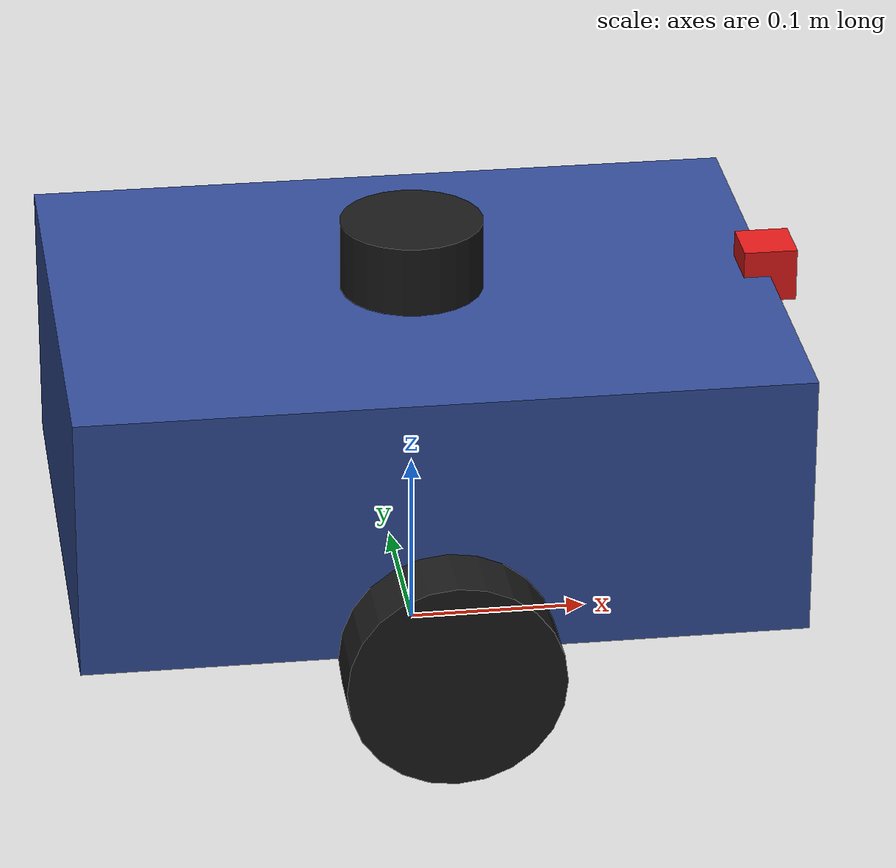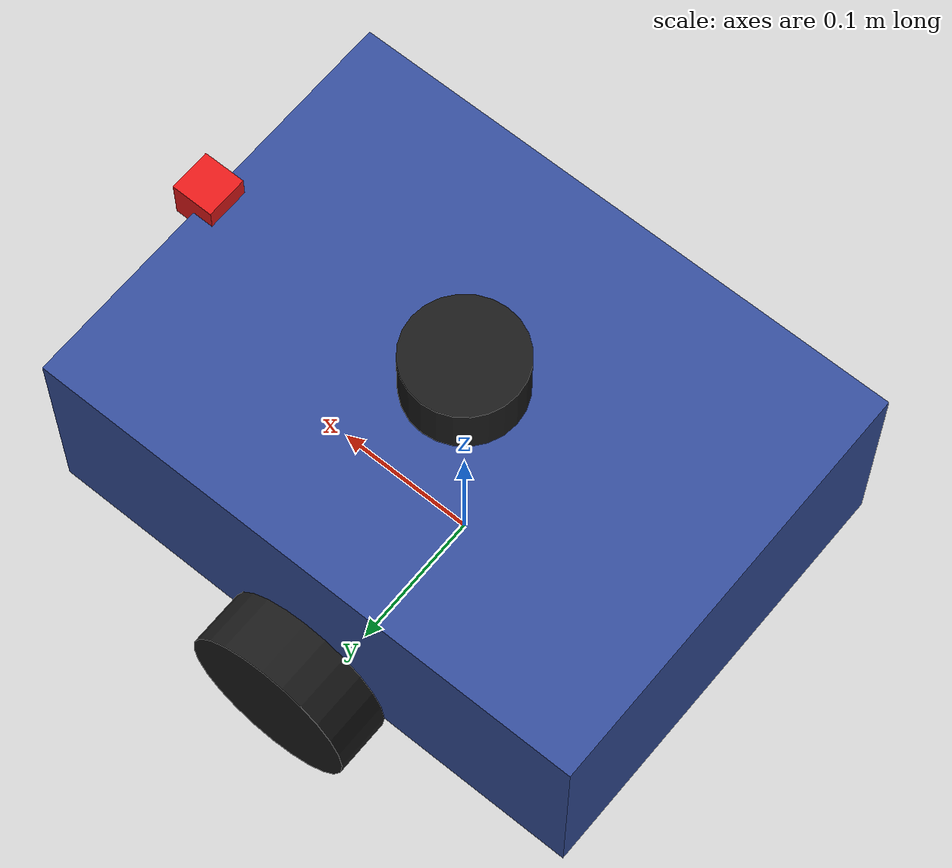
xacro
<?xml version="1.0"?>
<robot name="localization_bot" xmlns:xacro="http://www.ros.org/wiki/xacro">

  <xacro:property name="base_length" value="0.4"/>
  <xacro:property name="base_width" value="0.3"/>
  <xacro:property name="base_height" value="0.15"/>
  <xacro:property name="base_mass" value="5.0"/>

  <xacro:property name="wheel_radius" value="0.06"/>
  <xacro:property name="wheel_width" value="0.04"/>
  <xacro:property name="wheel_mass" value="0.5"/>
  <xacro:property name="wheel_separation" value="0.34"/>

  <xacro:property name="camera_size" value="0.03"/>

  <xacro:macro name="box_inertia" params="m x y z">
    <inertial>
      <mass value="${m}"/>
      <inertia
        ixx="${m * (y*y + z*z) / 12.0}" ixy="0.0" ixz="0.0"
        iyy="${m * (x*x + z*z) / 12.0}" iyz="0.0"
        izz="${m * (x*x + y*y) / 12.0}"/>
    </inertial>
  </xacro:macro>

  <xacro:macro name="cylinder_inertia" params="m r h">
    <inertial>
      <mass value="${m}"/>
      <inertia
        ixx="${m * (3*r*r + h*h) / 12.0}" ixy="0.0" ixz="0.0"
        iyy="${m * (3*r*r + h*h) / 12.0}" iyz="0.0"
        izz="${m * r*r / 2.0}"/>
    </inertial>
  </xacro:macro>

  <link name="base_footprint"/>

  <link name="base_link">
    <visual>
      <geometry><box size="${base_length} ${base_width} ${base_height}"/></geometry>
      <material name="chassis"><color rgba="0.2 0.3 0.6 1.0"/></material>
    </visual>
    <collision>
      <geometry><box size="${base_length} ${base_width} ${base_height}"/></geometry>
    </collision>
    <xacro:box_inertia m="${base_mass}" x="${base_length}" y="${base_width}" z="${base_height}"/>
  </link>

  <joint name="base_joint" type="fixed">
    <parent link="base_footprint"/>
    <child link="base_link"/>
    <origin xyz="0 0 ${wheel_radius + base_height/2.0}" rpy="0 0 0"/>
  </joint>

  <xacro:macro name="wheel" params="prefix y_reflect">
    <link name="${prefix}_wheel">
      <visual>
        <origin xyz="0 0 0" rpy="${pi/2} 0 0"/>
        <geometry><cylinder radius="${wheel_radius}" length="${wheel_width}"/></geometry>
        <material name="wheel"><color rgba="0.1 0.1 0.1 1.0"/></material>
      </visual>
      <collision>
        <origin xyz="0 0 0" rpy="${pi/2} 0 0"/>
        <geometry><cylinder radius="${wheel_radius}" length="${wheel_width}"/></geometry>
      </collision>
      <xacro:cylinder_inertia m="${wheel_mass}" r="${wheel_radius}" h="${wheel_width}"/>
    </link>
    <joint name="${prefix}_wheel_joint" type="continuous">
      <parent link="base_link"/>
      <child link="${prefix}_wheel"/>
      <origin xyz="0 ${y_reflect * wheel_separation/2.0} ${-base_height/2.0}" rpy="0 0 0"/>
      <axis xyz="0 1 0"/>
    </joint>
  </xacro:macro>

  <xacro:wheel prefix="left" y_reflect="1"/>
  <xacro:wheel prefix="right" y_reflect="-1"/>

  <link name="caster">
    <visual>
      <geometry><sphere radius="${wheel_radius/2.0}"/></geometry>
      <material name="caster"><color rgba="0.1 0.1 0.1 1.0"/></material>
    </visual>
    <collision>
      <geometry><sphere radius="${wheel_radius/2.0}"/></geometry>
      <surface><friction><ode><mu>0.0</mu><mu2>0.0</mu2></ode></friction></surface>
    </collision>
    <inertial>
      <mass value="0.2"/>
      <inertia ixx="1e-4" ixy="0" ixz="0" iyy="1e-4" iyz="0" izz="1e-4"/>
    </inertial>
  </link>
  <joint name="caster_joint" type="fixed">
    <parent link="base_link"/>
    <child link="caster"/>
    <origin xyz="${base_length/2.0 - wheel_radius/2.0} 0 ${-base_height/2.0 - wheel_radius/2.0}" rpy="0 0 0"/>
  </joint>

  <!-- Camera at the front of the chassis, looking forward. -->
  <link name="camera_link">
    <visual>
      <geometry><box size="${camera_size} ${camera_size} ${camera_size}"/></geometry>
      <material name="camera"><color rgba="0.9 0.1 0.1 1.0"/></material>
    </visual>
    <collision>
      <geometry><box size="${camera_size} ${camera_size} ${camera_size}"/></geometry>
    </collision>
    <xacro:box_inertia m="0.05" x="${camera_size}" y="${camera_size}" z="${camera_size}"/>
  </link>
  <joint name="camera_joint" type="fixed">
    <parent link="base_link"/>
    <child link="camera_link"/>
    <origin xyz="${base_length/2.0} 0 ${base_height/2.0}" rpy="0 0 0"/>
  </joint>

  <!-- Optical frame: z forward, x right, y down (REP-103). -->
  <link name="camera_optical_frame"/>
  <joint name="camera_optical_joint" type="fixed">
    <parent link="camera_link"/>
    <child link="camera_optical_frame"/>
    <origin xyz="0 0 0" rpy="${-pi/2} 0 ${-pi/2}"/>
  </joint>

  <!-- 2D lidar for navigation / obstacle avoidance. -->
  <link name="lidar_link">
    <visual>
      <geometry><cylinder radius="0.04" length="0.04"/></geometry>
      <material name="lidar"><color rgba="0.1 0.1 0.1 1.0"/></material>
    </visual>
    <collision>
      <geometry><cylinder radius="0.04" length="0.04"/></geometry>
    </collision>
    <inertial>
      <mass value="0.1"/>
      <inertia ixx="1e-4" ixy="0" ixz="0" iyy="1e-4" iyz="0" izz="1e-4"/>
    </inertial>
  </link>
  <joint name="lidar_joint" type="fixed">
    <parent link="base_link"/>
    <child link="lidar_link"/>
    <origin xyz="0 0 ${base_height/2.0 + 0.02}" rpy="0 0 0"/>
  </joint>

  <xacro:include filename="$(find apriltag_localization_sim)/urdf/robot.gazebo.xacro"/>

</robot>
